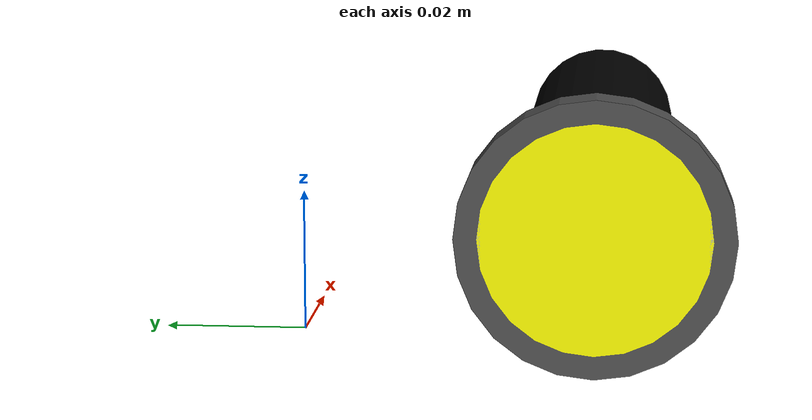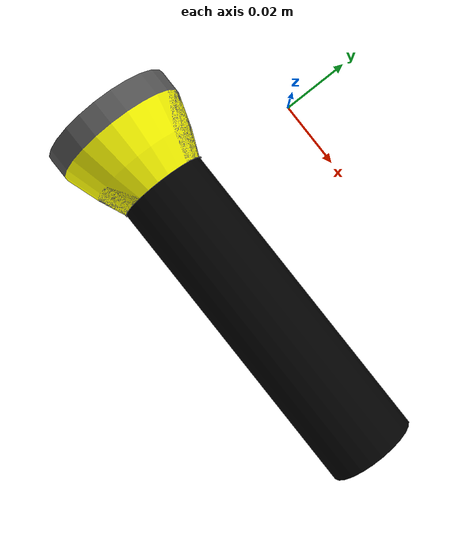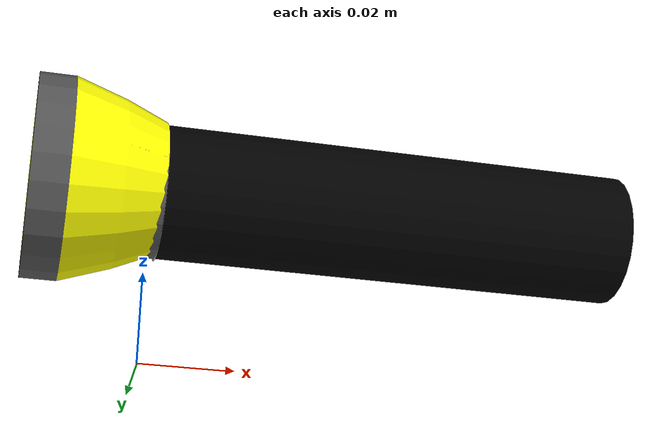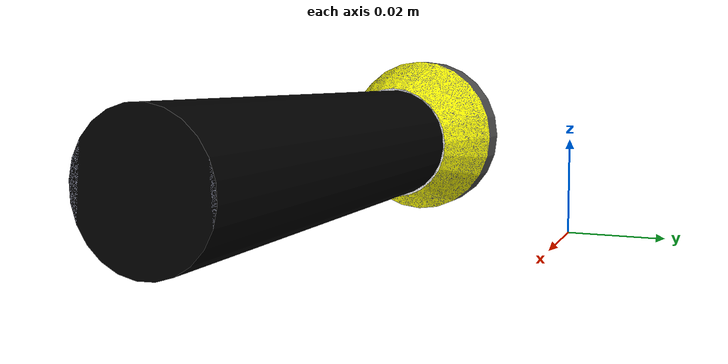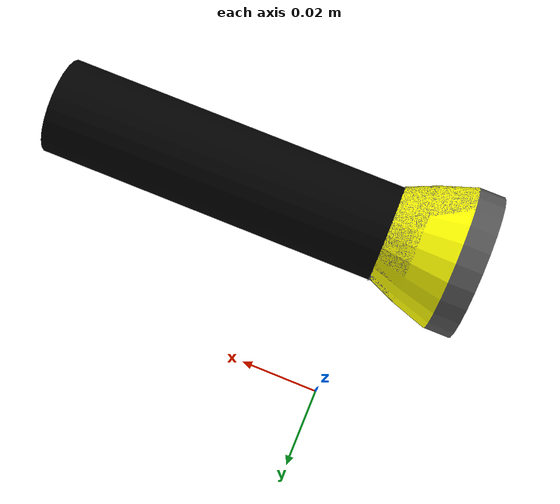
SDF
<?xml version="1.0" ?>
<sdf version="1.5">
  <model name="torch">
    <link name="link">
      <inertial>
      <pose>0.0 0.00000 0.0 0 0 0</pose>
        <mass>0.1</mass>
      </inertial>
      <collision name="collision">
        <geometry>
          <mesh>
            <uri>/home/olorin/Desktop/IISc/ROS-ARM-Planning/src/motoman_simulator/motoman_gazebo/sdf/torch/meshes/model.dae</uri>
            <scale>0.02 0.02 0.02</scale>
          </mesh>
        </geometry>
      </collision>
      <visual name="visual">
        <geometry>
          <mesh>
            <uri>/home/olorin/Desktop/IISc/ROS-ARM-Planning/src/motoman_simulator/motoman_gazebo/sdf/torch/meshes/model.dae</uri>
            <scale>0.02 0.02 0.02</scale>
         </mesh>
        </geometry>
      </visual>
    </link>
  </model>
</sdf>
